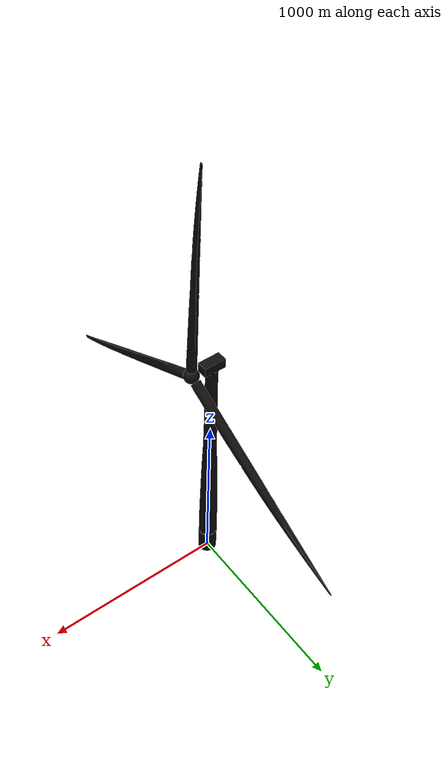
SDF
<?xml version='1.0'?>
<sdf version='1.9'>
  <model name='turbine'>
    <static>true</static>
    <pose>0 0 0 0 0 0</pose>
    <link name='tower_link'>
      <visual name='tower_visual'>
        <geometry>
          <mesh>
            <uri>model://turbine/meshes/tower.stl</uri>
          </mesh>
        </geometry>
        <material>
          <ambient>0.05 0.05 0.05</ambient>
          <diffuse>0.05 0.05 0.05</diffuse>
          <specular>1 1 1 1</specular>
          <pbr>
            <metal>
              <metalness>0.5</metalness>
              <roughness>0.5</roughness>
            </metal>
          </pbr>
        </material>
      </visual>
    </link>
    <link name='rotor_link'>
      <visual name='rotor_visual'>
        <geometry>
          <mesh>
            <uri>model://turbine/meshes/rotor.stl</uri>
          </mesh>
        </geometry>
        <material>
          <ambient>0.05 0.05 0.05</ambient>
          <diffuse>0.05 0.05 0.05</diffuse>
          <specular>1 1 1 1</specular>
          <pbr>
            <metal>
              <metalness>0.5</metalness>
              <roughness>0.5</roughness>
            </metal>
          </pbr>
        </material>
      </visual>
    </link>
    <joint name='rotor_joint' type='revolute'>
      <child>rotor_link</child>
      <parent>tower_link</parent>
      <axis>
        <xyz>0 0 1</xyz>
        <limit>
          <lower>-1e+16</lower>
          <upper>1e+16</upper>
        </limit>
        <dynamics>
          <damping>0.004</damping>
        </dynamics>
      </axis>
      <physics>
        <ode>
          <implicit_spring_damper>1</implicit_spring_damper>
        </ode>
      </physics>
    </joint>
  </model>
</sdf>
